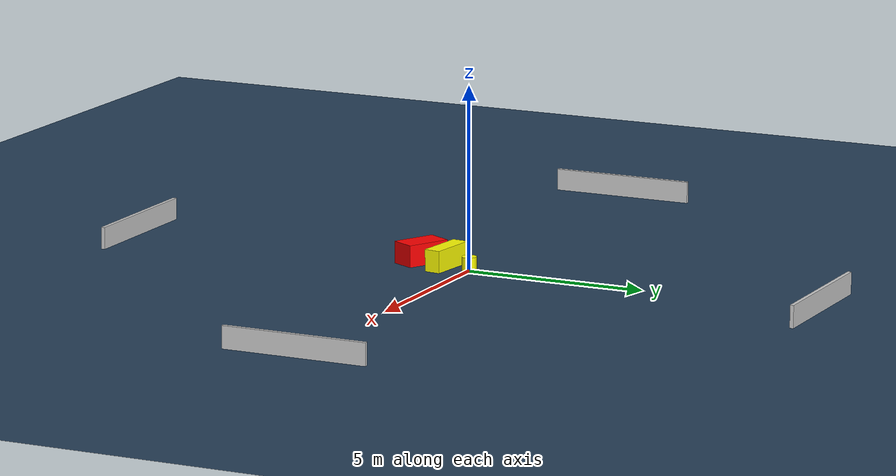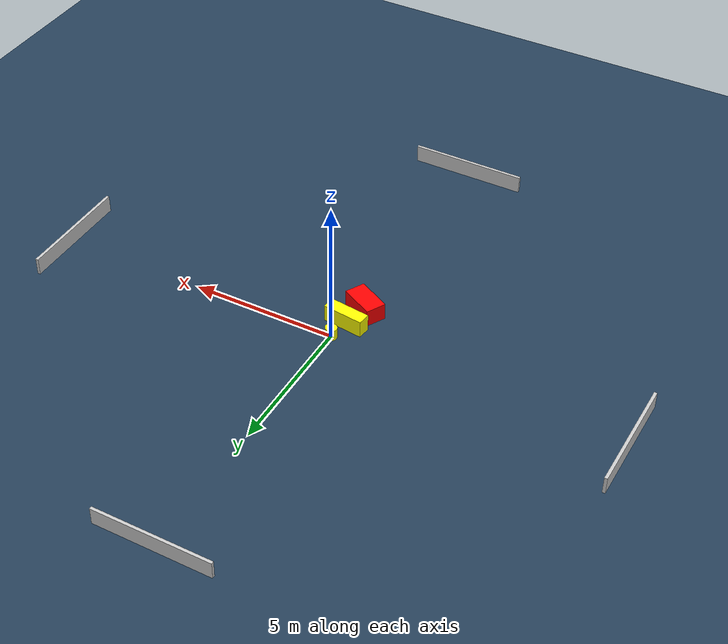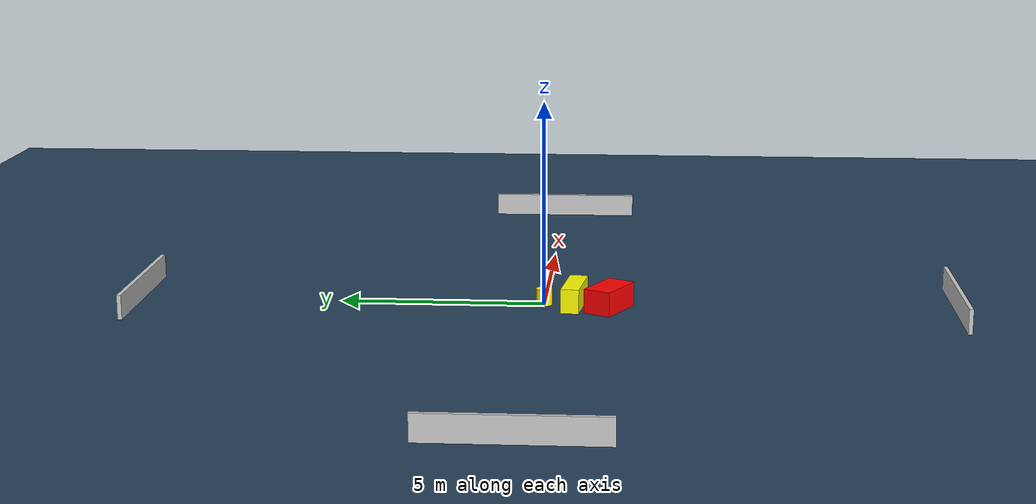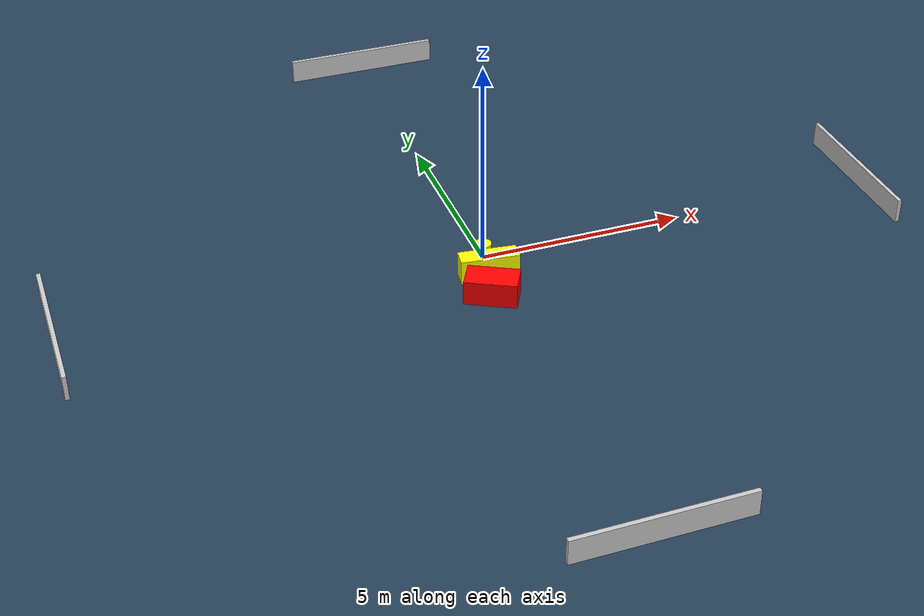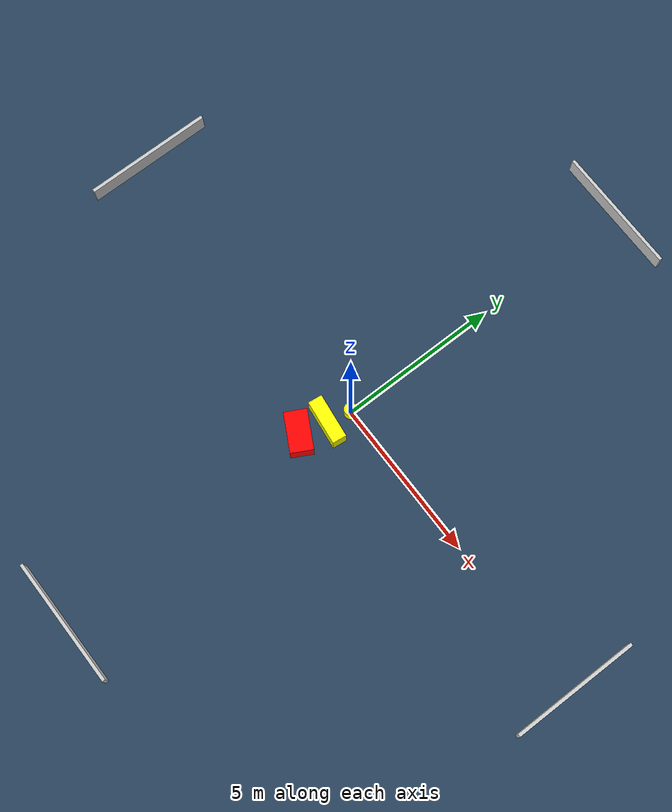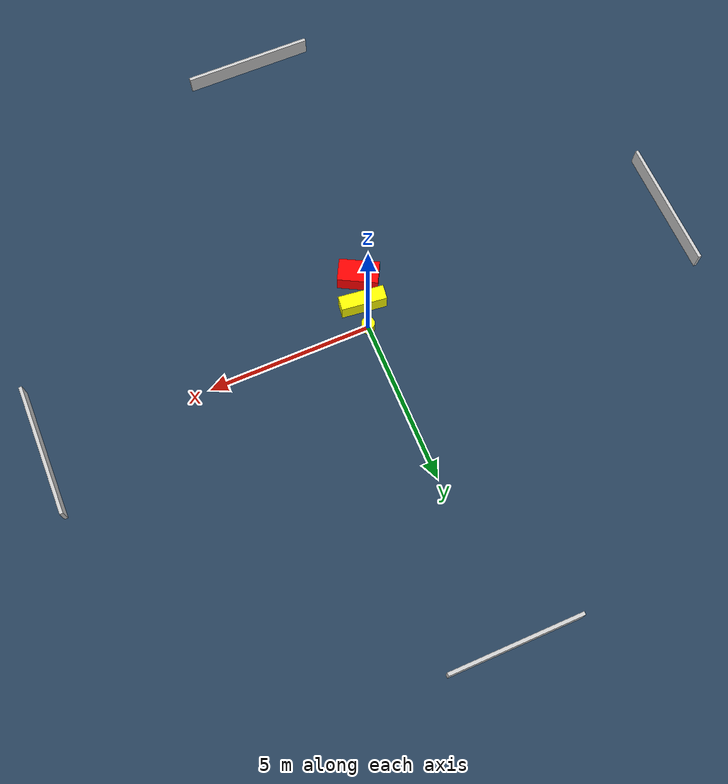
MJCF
<?xml version="1.0" ?>
<mujoco model="generated_environment">
  <option timestep="0.01" integrator="RK4" cone="elliptic"/>
  <default>
    <geom density="1"/>
  </default>
  <asset>
    <texture builtin="gradient" height="3072" name="skybox" rgb1="0.3 0.5 0.7" rgb2="0 0 0" type="skybox" width="512"/>
    <texture builtin="checker" height="300" name="groundplane" rgb1="0.2 0.3 0.4" rgb2="0.1 0.2 0.3" type="2d" width="300"/>
    <material name="groundplane" reflectance="0.2" texrepeat="5 5" texture="groundplane"/>
  </asset>
  <worldbody>
    <light dir="0 0 -1" directional="true" pos="0 0 1.5"/>
    <geom condim="3" friction="0.5 0.005 0.001" material="groundplane" name="floor" pos="0 0 0" size="0 0 0.05" type="plane"/>
    <body name="walls">
      <geom name="wall_1" condim="4" pos="-10.0 0.0 0.3" rgba="0.800000011920929 0.800000011920929 0.800000011920929 1.0" size="0.05 2.0 0.3" type="box"/>
      <geom name="wall_2" condim="4" pos="10.0 0.0 0.3" rgba="0.800000011920929 0.800000011920929 0.800000011920929 1.0" size="0.05 2.0 0.3" type="box"/>
      <geom name="wall_3" condim="4" pos="0.0 -10.0 0.3" rgba="0.800000011920929 0.800000011920929 0.800000011920929 1.0" size="2.0 0.05 0.3" type="box"/>
      <geom name="wall_4" condim="4" pos="0.0 10.0 0.3" rgba="0.800000011920929 0.800000011920929 0.800000011920929 1.0" size="2.0 0.05 0.3" type="box"/>
    </body>
    <body name="robot">
      <joint name="joint_x" type="slide" pos="0 0 0" axis="1 0 0"/>
      <joint name="joint_y" type="slide" pos="0 0 0" axis="0 1 0"/>
      <geom name="robot" type="cylinder" pos="0.0 0.0 0.2" size="0.2 0.2 0.0" mass="5.0" friction="1.0 0.005 0.0001" condim="4" rgba="1.0 1.0 0.0 1.0"/>
    </body>
    <body name="obstacle_1_movable">
      <geom name="obstacle_1_movable" condim="4" pos="-0.1346897256960022 -0.7415468174792812 0.3" euler="0 0 173.166648458693" friction="0.0 0.005 0.001" rgba="1.0 1.0 0.0 1.0" size="0.695969254559965 0.22047222769562233 0.3" type="box" mass="0.1"/>
      <joint type="free"/>
    </body>
    <body name="obstacle_2_static">
      <geom name="obstacle_2_static" condim="4" pos="-0.3609805006552339 -1.5967433911392868 0.3" euler="0 0 152.03242545994885" friction="0.0 0.005 0.001" rgba="1.0 0.0 0.0 1.0" size="0.6135994524903543 0.34863126950139234 0.3" type="box"/>
    </body>
  </worldbody>
  <actuator>
    <motor name="actuator_x" joint="joint_x" gear="1" ctrlrange="-1 1"/>
    <motor name="actuator_y" joint="joint_y" gear="1" ctrlrange="-1 1"/>
  </actuator>
</mujoco>
